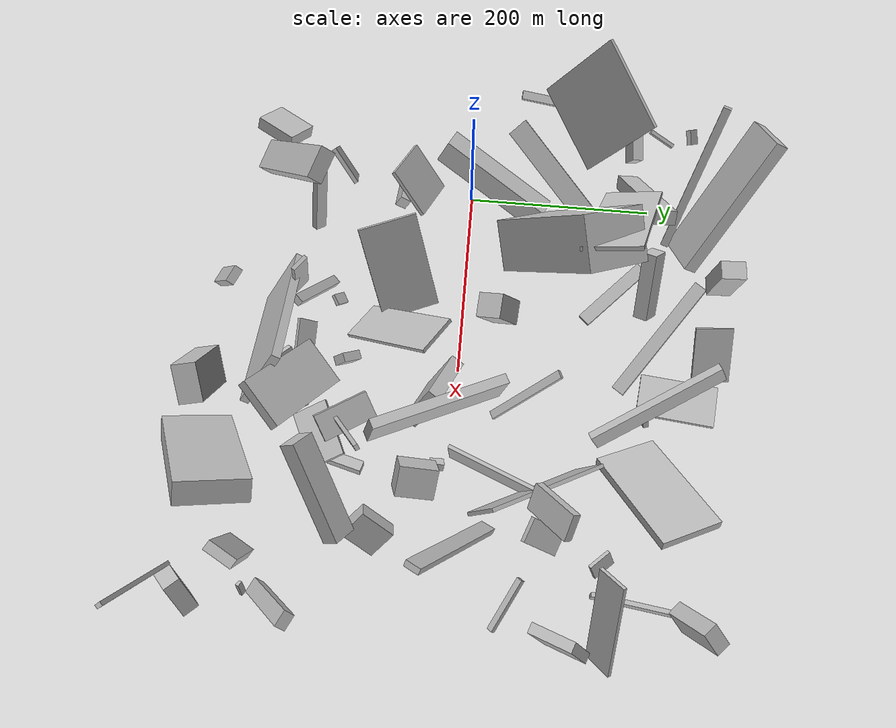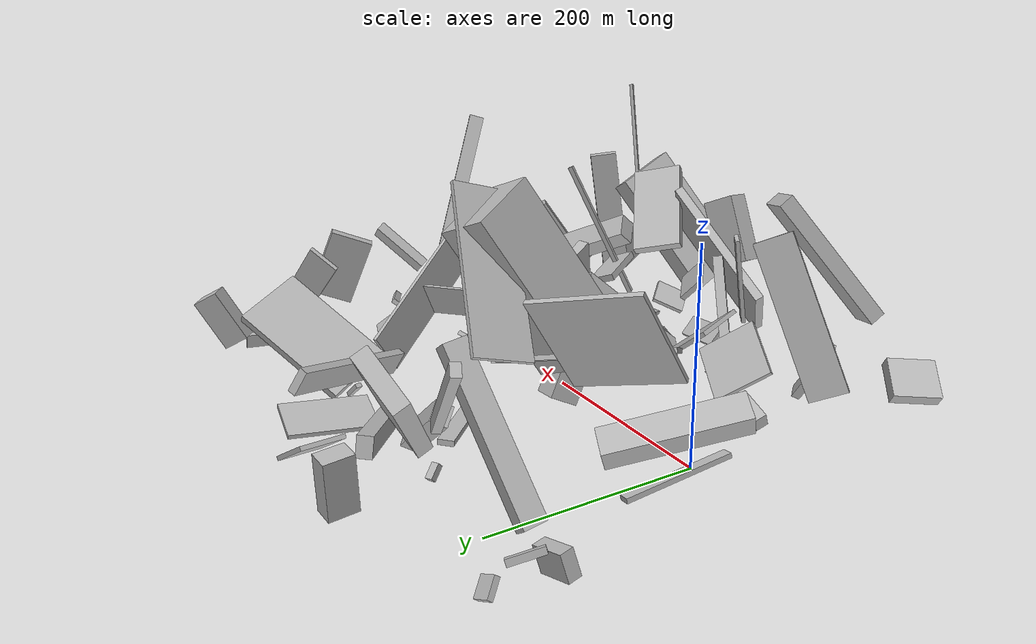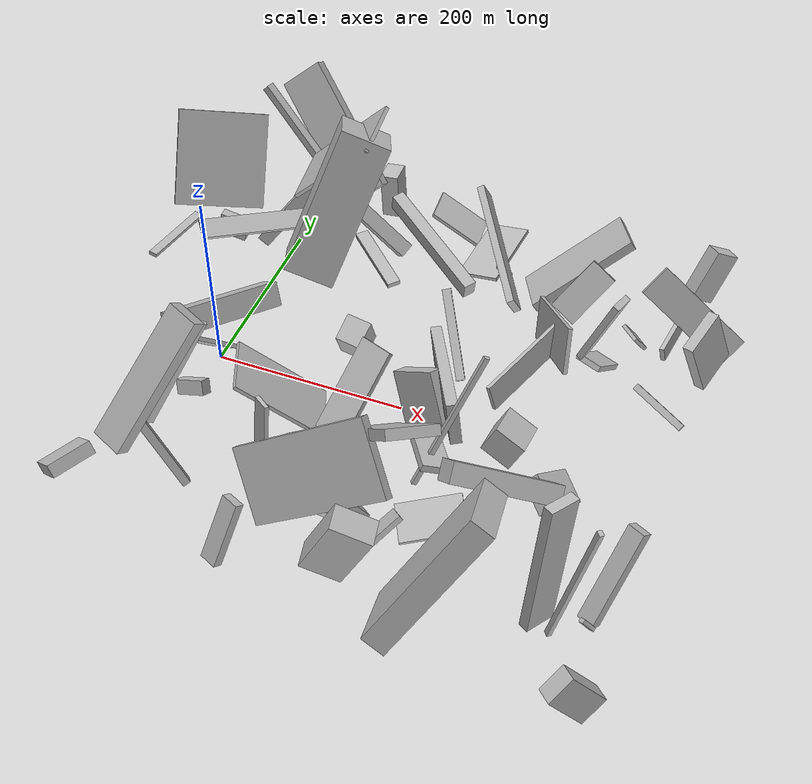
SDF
<sdf version="1.6">
 <world name="default">
  <scene>
   <sky><clouds><speed>12</speed></clouds></sky>
   <ambient>0.4 0.4 0.4 1</ambient>
   <background>0.7 0.7 0.7 1</background>
   <shadows>1</shadows>
  </scene>
  <gravity>0 0 -9.8066</gravity>
  <magnetic_field>6e-06 2.3e-05 -4.2e-05</magnetic_field>
  <physics default="0" name="default_physics" type="ode">
   <ode>
    <solver>
     <type>quick</type>
     <iters>10</iters>
     <sor>1.0</sor>
     <use_dynamic_moi_rescaling>0</use_dynamic_moi_rescaling>
    </solver>
    <constraints>
     <cfm>0</cfm>
     <erp>0.2</erp>
     <contact_max_correcting_vel>100</contact_max_correcting_vel>
     <contact_surface_layer>0.001</contact_surface_layer>
    </constraints>
   </ode>
   <max_step_size>0.004</max_step_size>
   <real_time_factor>1</real_time_factor>
   <real_time_update_rate>250</real_time_update_rate>
  </physics>
  <light name="sun" type="directional">
   <pose>0 0 10 0 0 0</pose>
   <diffuse>0.8 0.8 0.8 1</diffuse>
   <specular>0.2 0.2 0.2 1</specular>
   <attenuation>
    <range>1000</range>
    <constant>0.9</constant>
    <linear>0.01</linear>
    <quadratic>0.001</quadratic>
   </attenuation>
   <direction>-0.5 0.1 -0.9</direction>
  </light>
  <model name="building_1">
   <static>0</static>
   <pose>227.481139265218 -249.1822610221553 74.92997537212239 -0.10817215695686103 -0.4285039020729873 -2.9130374501938943</pose>
   <link name="link">
    <gravity>0</gravity>
    <pose>0 0 36.5 0 0 0</pose>
    <collision name="collision"><geometry><box><size>39 24 73</size></box></geometry></collision>
    <visual name="visual">
     <cast_shadows>0</cast_shadows>
     <geometry><box><size>39 24 73</size></box></geometry>
     <material>
      <script>
       <uri>model://HANNAS_wall/materials/scripts</uri>
       <uri>model://HANNAS_wall/materials/textures</uri>
       <name>vrc/HANNAS_wall</name>
      </script>
     </material>
    </visual>
   </link>
  </model>
  <model name="building_2">
   <static>0</static>
   <pose>292.84471855620217 -0.5307530838504881 51.10956724736447 0.843014397676574 -1.3268915294652515 -2.826468958626521</pose>
   <link name="link">
    <gravity>0</gravity>
    <pose>0 0 51.0 0 0 0</pose>
    <collision name="collision"><geometry><box><size>30 4 102</size></box></geometry></collision>
    <visual name="visual">
     <cast_shadows>0</cast_shadows>
     <geometry><box><size>30 4 102</size></box></geometry>
     <material>
      <script>
       <uri>model://HANNAS_wall/materials/scripts</uri>
       <uri>model://HANNAS_wall/materials/textures</uri>
       <name>vrc/HANNAS_wall</name>
      </script>
     </material>
    </visual>
   </link>
  </model>
  <model name="building_3">
   <static>0</static>
   <pose>254.46805633644038 -83.00629290061852 77.61631660739066 1.1665914870544623 -1.170065612739966 0.9408880169866417</pose>
   <link name="link">
    <gravity>0</gravity>
    <pose>0 0 28.5 0 0 0</pose>
    <collision name="collision"><geometry><box><size>7 28 57</size></box></geometry></collision>
    <visual name="visual">
     <cast_shadows>0</cast_shadows>
     <geometry><box><size>7 28 57</size></box></geometry>
     <material>
      <script>
       <uri>model://HANNAS_wall/materials/scripts</uri>
       <uri>model://HANNAS_wall/materials/textures</uri>
       <name>vrc/HANNAS_wall</name>
      </script>
     </material>
    </visual>
   </link>
  </model>
  <model name="building_4">
   <static>0</static>
   <pose>11.763566412089332 -127.40269227612251 106.6651090704433 1.9325024818764505 -1.115938416840151 0.3155344388633478</pose>
   <link name="link">
    <gravity>0</gravity>
    <pose>0 0 2.0 0 0 0</pose>
    <collision name="collision"><geometry><box><size>150 37 4</size></box></geometry></collision>
    <visual name="visual">
     <cast_shadows>0</cast_shadows>
     <geometry><box><size>150 37 4</size></box></geometry>
     <material>
      <script>
       <uri>model://HANNAS_wall/materials/scripts</uri>
       <uri>model://HANNAS_wall/materials/textures</uri>
       <name>vrc/HANNAS_wall</name>
      </script>
     </material>
    </visual>
   </link>
  </model>
  <model name="building_5">
   <static>0</static>
   <pose>317.58651227378783 -204.91557742856733 86.48062145749546 1.137433498627147 0.5079004303610929 -0.07192468600488103</pose>
   <link name="link">
    <gravity>0</gravity>
    <pose>0 0 35.0 0 0 0</pose>
    <collision name="collision"><geometry><box><size>24 150 70</size></box></geometry></collision>
    <visual name="visual">
     <cast_shadows>0</cast_shadows>
     <geometry><box><size>24 150 70</size></box></geometry>
     <material>
      <script>
       <uri>model://HANNAS_wall/materials/scripts</uri>
       <uri>model://HANNAS_wall/materials/textures</uri>
       <name>vrc/HANNAS_wall</name>
      </script>
     </material>
    </visual>
   </link>
  </model>
  <model name="building_6">
   <static>0</static>
   <pose>268.37720599291623 148.1540410221866 32.94483416400994 -1.0284412072009141 1.0555518114377276 1.0396991069899049</pose>
   <link name="link">
    <gravity>0</gravity>
    <pose>0 0 75.0 0 0 0</pose>
    <collision name="collision"><geometry><box><size>24 8 150</size></box></geometry></collision>
    <visual name="visual">
     <cast_shadows>0</cast_shadows>
     <geometry><box><size>24 8 150</size></box></geometry>
     <material>
      <script>
       <uri>model://HANNAS_wall/materials/scripts</uri>
       <uri>model://HANNAS_wall/materials/textures</uri>
       <name>vrc/HANNAS_wall</name>
      </script>
     </material>
    </visual>
   </link>
  </model>
  <model name="building_7">
   <static>0</static>
   <pose>77.37119824431403 61.45337844499391 96.94105020687759 0.42038123651597553 -0.3861475229336295 -2.9031322622093</pose>
   <link name="link">
    <gravity>0</gravity>
    <pose>0 0 75.0 0 0 0</pose>
    <collision name="collision"><geometry><box><size>51 63 150</size></box></geometry></collision>
    <visual name="visual">
     <cast_shadows>0</cast_shadows>
     <geometry><box><size>51 63 150</size></box></geometry>
     <material>
      <script>
       <uri>model://HANNAS_wall/materials/scripts</uri>
       <uri>model://HANNAS_wall/materials/textures</uri>
       <name>vrc/HANNAS_wall</name>
      </script>
     </material>
    </visual>
   </link>
  </model>
  <model name="building_8">
   <static>0</static>
   <pose>132.95149250428122 -136.42965369837054 12.84420384641897 -0.8874151281414072 0.14816767146375545 0.5291461373962191</pose>
   <link name="link">
    <gravity>0</gravity>
    <pose>0 0 2.0 0 0 0</pose>
    <collision name="collision"><geometry><box><size>12 17 4</size></box></geometry></collision>
    <visual name="visual">
     <cast_shadows>0</cast_shadows>
     <geometry><box><size>12 17 4</size></box></geometry>
     <material>
      <script>
       <uri>model://HANNAS_wall/materials/scripts</uri>
       <uri>model://HANNAS_wall/materials/textures</uri>
       <name>vrc/HANNAS_wall</name>
      </script>
     </material>
    </visual>
   </link>
  </model>
  <model name="building_9">
   <static>0</static>
   <pose>376.70290979209534 119.71949673692075 20.304417783715337 0.9620605557790457 0.05304821350896932 -0.3554064819603349</pose>
   <link name="link">
    <gravity>0</gravity>
    <pose>0 0 22.0 0 0 0</pose>
    <collision name="collision"><geometry><box><size>27 6 44</size></box></geometry></collision>
    <visual name="visual">
     <cast_shadows>0</cast_shadows>
     <geometry><box><size>27 6 44</size></box></geometry>
     <material>
      <script>
       <uri>model://HANNAS_wall/materials/scripts</uri>
       <uri>model://HANNAS_wall/materials/textures</uri>
       <name>vrc/HANNAS_wall</name>
      </script>
     </material>
    </visual>
   </link>
  </model>
  <model name="building_10">
   <static>0</static>
   <pose>253.3570128118311 -173.23025798556026 39.82212911906193 0.522751097314918 -0.5934007068349888 -0.9119568490904469</pose>
   <link name="link">
    <gravity>0</gravity>
    <pose>0 0 2.5 0 0 0</pose>
    <collision name="collision"><geometry><box><size>25 34 5</size></box></geometry></collision>
    <visual name="visual">
     <cast_shadows>0</cast_shadows>
     <geometry><box><size>25 34 5</size></box></geometry>
     <material>
      <script>
       <uri>model://HANNAS_wall/materials/scripts</uri>
       <uri>model://HANNAS_wall/materials/textures</uri>
       <name>vrc/HANNAS_wall</name>
      </script>
     </material>
    </visual>
   </link>
  </model>
  <model name="building_11">
   <static>0</static>
   <pose>228.65109916550088 -28.04214869931148 51.38752653294312 1.9010968372757036 -0.921661819686512 2.3212789833257164</pose>
   <link name="link">
    <gravity>0</gravity>
    <pose>0 0 7.5 0 0 0</pose>
    <collision name="collision"><geometry><box><size>57 60 15</size></box></geometry></collision>
    <visual name="visual">
     <cast_shadows>0</cast_shadows>
     <geometry><box><size>57 60 15</size></box></geometry>
     <material>
      <script>
       <uri>model://HANNAS_wall/materials/scripts</uri>
       <uri>model://HANNAS_wall/materials/textures</uri>
       <name>vrc/HANNAS_wall</name>
      </script>
     </material>
    </visual>
   </link>
  </model>
  <model name="building_12">
   <static>0</static>
   <pose>301.5117001836935 -13.387505962808495 14.928694604041551 2.36538488830194 0.18210927901703153 1.5985553789187452</pose>
   <link name="link">
    <gravity>0</gravity>
    <pose>0 0 4.5 0 0 0</pose>
    <collision name="collision"><geometry><box><size>15 10 9</size></box></geometry></collision>
    <visual name="visual">
     <cast_shadows>0</cast_shadows>
     <geometry><box><size>15 10 9</size></box></geometry>
     <material>
      <script>
       <uri>model://HANNAS_wall/materials/scripts</uri>
       <uri>model://HANNAS_wall/materials/textures</uri>
       <name>vrc/HANNAS_wall</name>
      </script>
     </material>
    </visual>
   </link>
  </model>
  <model name="building_13">
   <static>0</static>
   <pose>-16.44971325780183 27.543368275352492 38.60653595737185 -0.9905697111795937 -0.24240880794003608 -2.074907290572221</pose>
   <link name="link">
    <gravity>0</gravity>
    <pose>0 0 13.0 0 0 0</pose>
    <collision name="collision"><geometry><box><size>127 26 26</size></box></geometry></collision>
    <visual name="visual">
     <cast_shadows>0</cast_shadows>
     <geometry><box><size>127 26 26</size></box></geometry>
     <material>
      <script>
       <uri>model://HANNAS_wall/materials/scripts</uri>
       <uri>model://HANNAS_wall/materials/textures</uri>
       <name>vrc/HANNAS_wall</name>
      </script>
     </material>
    </visual>
   </link>
  </model>
  <model name="building_14">
   <static>0</static>
   <pose>206.70030092017095 -202.76124314428657 76.89679999836368 -0.5535309154315026 -0.5972642211111988 0.0490688112240395</pose>
   <link name="link">
    <gravity>0</gravity>
    <pose>0 0 36.5 0 0 0</pose>
    <collision name="collision"><geometry><box><size>150 9 73</size></box></geometry></collision>
    <visual name="visual">
     <cast_shadows>0</cast_shadows>
     <geometry><box><size>150 9 73</size></box></geometry>
     <material>
      <script>
       <uri>model://HANNAS_wall/materials/scripts</uri>
       <uri>model://HANNAS_wall/materials/textures</uri>
       <name>vrc/HANNAS_wall</name>
      </script>
     </material>
    </visual>
   </link>
  </model>
  <model name="building_15">
   <static>0</static>
   <pose>20.392383311140673 182.70964804384616 73.57440455745558 -0.18941493913468962 -0.9443363826028112 0.22367839608463977</pose>
   <link name="link">
    <gravity>0</gravity>
    <pose>0 0 7.0 0 0 0</pose>
    <collision name="collision"><geometry><box><size>150 22 14</size></box></geometry></collision>
    <visual name="visual">
     <cast_shadows>0</cast_shadows>
     <geometry><box><size>150 22 14</size></box></geometry>
     <material>
      <script>
       <uri>model://HANNAS_wall/materials/scripts</uri>
       <uri>model://HANNAS_wall/materials/textures</uri>
       <name>vrc/HANNAS_wall</name>
      </script>
     </material>
    </visual>
   </link>
  </model>
  <model name="building_16">
   <static>0</static>
   <pose>426.5182102439301 -260.1216215273775 93.17090263658616 0.1361795748633546 -0.1431622393701641 2.257004053396519</pose>
   <link name="link">
    <gravity>0</gravity>
    <pose>0 0 75.0 0 0 0</pose>
    <collision name="collision"><geometry><box><size>5 4 150</size></box></geometry></collision>
    <visual name="visual">
     <cast_shadows>0</cast_shadows>
     <geometry><box><size>5 4 150</size></box></geometry>
     <material>
      <script>
       <uri>model://HANNAS_wall/materials/scripts</uri>
       <uri>model://HANNAS_wall/materials/textures</uri>
       <name>vrc/HANNAS_wall</name>
      </script>
     </material>
    </visual>
   </link>
  </model>
  <model name="building_17">
   <static>0</static>
   <pose>94.5045951715115 202.3843729573835 43.73109941872113 -0.66268458013724 -0.6974288209415047 -3.1241463622554444</pose>
   <link name="link">
    <gravity>0</gravity>
    <pose>0 0 9.5 0 0 0</pose>
    <collision name="collision"><geometry><box><size>74 16 19</size></box></geometry></collision>
    <visual name="visual">
     <cast_shadows>0</cast_shadows>
     <geometry><box><size>74 16 19</size></box></geometry>
     <material>
      <script>
       <uri>model://HANNAS_wall/materials/scripts</uri>
       <uri>model://HANNAS_wall/materials/textures</uri>
       <name>vrc/HANNAS_wall</name>
      </script>
     </material>
    </visual>
   </link>
  </model>
  <model name="building_18">
   <static>0</static>
   <pose>30.20996367917128 -39.84844854371961 65.47350899139073 0.8507173026576427 -0.5237301167515331 -0.37554103182773535</pose>
   <link name="link">
    <gravity>0</gravity>
    <pose>0 0 27.0 0 0 0</pose>
    <collision name="collision"><geometry><box><size>55 4 54</size></box></geometry></collision>
    <visual name="visual">
     <cast_shadows>0</cast_shadows>
     <geometry><box><size>55 4 54</size></box></geometry>
     <material>
      <script>
       <uri>model://HANNAS_wall/materials/scripts</uri>
       <uri>model://HANNAS_wall/materials/textures</uri>
       <name>vrc/HANNAS_wall</name>
      </script>
     </material>
    </visual>
   </link>
  </model>
  <model name="building_19">
   <static>0</static>
   <pose>349.12888193439375 99.15291676920248 121.73016292919598 2.316568015997684 -0.500921253119313 2.8980883553300485</pose>
   <link name="link">
    <gravity>0</gravity>
    <pose>0 0 4.5 0 0 0</pose>
    <collision name="collision"><geometry><box><size>28 58 9</size></box></geometry></collision>
    <visual name="visual">
     <cast_shadows>0</cast_shadows>
     <geometry><box><size>28 58 9</size></box></geometry>
     <material>
      <script>
       <uri>model://HANNAS_wall/materials/scripts</uri>
       <uri>model://HANNAS_wall/materials/textures</uri>
       <name>vrc/HANNAS_wall</name>
      </script>
     </material>
    </visual>
   </link>
  </model>
  <model name="building_20">
   <static>0</static>
   <pose>323.1903825618175 -13.88970625944479 36.79013878288636 -1.0495314141733616 1.057704362918457 -2.697406226329589</pose>
   <link name="link">
    <gravity>0</gravity>
    <pose>0 0 20.5 0 0 0</pose>
    <collision name="collision"><geometry><box><size>28 33 41</size></box></geometry></collision>
    <visual name="visual">
     <cast_shadows>0</cast_shadows>
     <geometry><box><size>28 33 41</size></box></geometry>
     <material>
      <script>
       <uri>model://HANNAS_wall/materials/scripts</uri>
       <uri>model://HANNAS_wall/materials/textures</uri>
       <name>vrc/HANNAS_wall</name>
      </script>
     </material>
    </visual>
   </link>
  </model>
  <model name="building_21">
   <static>0</static>
   <pose>-37.505519190078004 -190.87447803252329 50.829616856307375 1.6821631782131954 0.917472732472657 -0.42883126359170637</pose>
   <link name="link">
    <gravity>0</gravity>
    <pose>0 0 22.0 0 0 0</pose>
    <collision name="collision"><geometry><box><size>13 38 44</size></box></geometry></collision>
    <visual name="visual">
     <cast_shadows>0</cast_shadows>
     <geometry><box><size>13 38 44</size></box></geometry>
     <material>
      <script>
       <uri>model://HANNAS_wall/materials/scripts</uri>
       <uri>model://HANNAS_wall/materials/textures</uri>
       <name>vrc/HANNAS_wall</name>
      </script>
     </material>
    </visual>
   </link>
  </model>
  <model name="building_22">
   <static>0</static>
   <pose>-91.81763550657642 91.54988038701597 68.17348361863317 -2.9942344213891006 -0.14826731942321003 3.0537513907169274</pose>
   <link name="link">
    <gravity>0</gravity>
    <pose>0 0 2.0 0 0 0</pose>
    <collision name="collision"><geometry><box><size>9 90 4</size></box></geometry></collision>
    <visual name="visual">
     <cast_shadows>0</cast_shadows>
     <geometry><box><size>9 90 4</size></box></geometry>
     <material>
      <script>
       <uri>model://HANNAS_wall/materials/scripts</uri>
       <uri>model://HANNAS_wall/materials/textures</uri>
       <name>vrc/HANNAS_wall</name>
      </script>
     </material>
    </visual>
   </link>
  </model>
  <model name="building_23">
   <static>0</static>
   <pose>92.46487773179209 -40.88532026352868 57.66720573114307 1.5134492840720026 0.7093661143286526 0.3614581923329056</pose>
   <link name="link">
    <gravity>0</gravity>
    <pose>0 0 31.0 0 0 0</pose>
    <collision name="collision"><geometry><box><size>105 4 62</size></box></geometry></collision>
    <visual name="visual">
     <cast_shadows>0</cast_shadows>
     <geometry><box><size>105 4 62</size></box></geometry>
     <material>
      <script>
       <uri>model://HANNAS_wall/materials/scripts</uri>
       <uri>model://HANNAS_wall/materials/textures</uri>
       <name>vrc/HANNAS_wall</name>
      </script>
     </material>
    </visual>
   </link>
  </model>
  <model name="building_24">
   <static>0</static>
   <pose>149.20009823511052 37.78466550882594 39.85900780131026 1.4198370230055126 0.4723534577524025 -1.7116813820457895</pose>
   <link name="link">
    <gravity>0</gravity>
    <pose>0 0 13.0 0 0 0</pose>
    <collision name="collision"><geometry><box><size>28 42 26</size></box></geometry></collision>
    <visual name="visual">
     <cast_shadows>0</cast_shadows>
     <geometry><box><size>28 42 26</size></box></geometry>
     <material>
      <script>
       <uri>model://HANNAS_wall/materials/scripts</uri>
       <uri>model://HANNAS_wall/materials/textures</uri>
       <name>vrc/HANNAS_wall</name>
      </script>
     </material>
    </visual>
   </link>
  </model>
  <model name="building_25">
   <static>0</static>
   <pose>449.54375979241786 -202.2864121639913 34.96292042151427 2.420693077154504 -0.8402076654071738 -2.852576208106354</pose>
   <link name="link">
    <gravity>0</gravity>
    <pose>0 0 3.0 0 0 0</pose>
    <collision name="collision"><geometry><box><size>15 4 6</size></box></geometry></collision>
    <visual name="visual">
     <cast_shadows>0</cast_shadows>
     <geometry><box><size>15 4 6</size></box></geometry>
     <material>
      <script>
       <uri>model://HANNAS_wall/materials/scripts</uri>
       <uri>model://HANNAS_wall/materials/textures</uri>
       <name>vrc/HANNAS_wall</name>
      </script>
     </material>
    </visual>
   </link>
  </model>
  <model name="building_26">
   <static>0</static>
   <pose>256.08429475253826 -153.33897154982589 23.51143279857908 1.3996758325202465 -0.22562888603370088 2.0550898142576237</pose>
   <link name="link">
    <gravity>0</gravity>
    <pose>0 0 31.5 0 0 0</pose>
    <collision name="collision"><geometry><box><size>39 4 63</size></box></geometry></collision>
    <visual name="visual">
     <cast_shadows>0</cast_shadows>
     <geometry><box><size>39 4 63</size></box></geometry>
     <material>
      <script>
       <uri>model://HANNAS_wall/materials/scripts</uri>
       <uri>model://HANNAS_wall/materials/textures</uri>
       <name>vrc/HANNAS_wall</name>
      </script>
     </material>
    </visual>
   </link>
  </model>
  <model name="building_27">
   <static>0</static>
   <pose>6.0443198682329635 -210.17496576361805 93.29388807799623 0.6664013244558669 -0.19227391634768604 2.779181408015458</pose>
   <link name="link">
    <gravity>0</gravity>
    <pose>0 0 71.0 0 0 0</pose>
    <collision name="collision"><geometry><box><size>31 15 142</size></box></geometry></collision>
    <visual name="visual">
     <cast_shadows>0</cast_shadows>
     <geometry><box><size>31 15 142</size></box></geometry>
     <material>
      <script>
       <uri>model://HANNAS_wall/materials/scripts</uri>
       <uri>model://HANNAS_wall/materials/textures</uri>
       <name>vrc/HANNAS_wall</name>
      </script>
     </material>
    </visual>
   </link>
  </model>
  <model name="building_28">
   <static>0</static>
   <pose>449.90949715977314 -160.9614323110576 61.232895488167756 1.5403292388078382 -0.9746533831512645 1.1237064837067205</pose>
   <link name="link">
    <gravity>0</gravity>
    <pose>0 0 8.5 0 0 0</pose>
    <collision name="collision"><geometry><box><size>96 12 17</size></box></geometry></collision>
    <visual name="visual">
     <cast_shadows>0</cast_shadows>
     <geometry><box><size>96 12 17</size></box></geometry>
     <material>
      <script>
       <uri>model://HANNAS_wall/materials/scripts</uri>
       <uri>model://HANNAS_wall/materials/textures</uri>
       <name>vrc/HANNAS_wall</name>
      </script>
     </material>
    </visual>
   </link>
  </model>
  <model name="building_29">
   <static>0</static>
   <pose>224.16386707685749 72.03240204019131 44.85510525011972 1.3140876757290196 -0.6211563258909762 2.122987104458905</pose>
   <link name="link">
    <gravity>0</gravity>
    <pose>0 0 4.5 0 0 0</pose>
    <collision name="collision"><geometry><box><size>94 4 9</size></box></geometry></collision>
    <visual name="visual">
     <cast_shadows>0</cast_shadows>
     <geometry><box><size>94 4 9</size></box></geometry>
     <material>
      <script>
       <uri>model://HANNAS_wall/materials/scripts</uri>
       <uri>model://HANNAS_wall/materials/textures</uri>
       <name>vrc/HANNAS_wall</name>
      </script>
     </material>
    </visual>
   </link>
  </model>
  <model name="building_30">
   <static>0</static>
   <pose>222.30578394619397 -130.54185414333284 112.95185304210686 0.32834113265092946 -0.7680757575909025 2.052702519989607</pose>
   <link name="link">
    <gravity>0</gravity>
    <pose>0 0 48.0 0 0 0</pose>
    <collision name="collision"><geometry><box><size>10 50 96</size></box></geometry></collision>
    <visual name="visual">
     <cast_shadows>0</cast_shadows>
     <geometry><box><size>10 50 96</size></box></geometry>
     <material>
      <script>
       <uri>model://HANNAS_wall/materials/scripts</uri>
       <uri>model://HANNAS_wall/materials/textures</uri>
       <name>vrc/HANNAS_wall</name>
      </script>
     </material>
    </visual>
   </link>
  </model>
  <model name="building_31">
   <static>0</static>
   <pose>412.4592483215169 -202.82065333252285 99.29815009101594 -1.7603713567702026 -1.4379412945913943 1.2263952097043287</pose>
   <link name="link">
    <gravity>0</gravity>
    <pose>0 0 5.0 0 0 0</pose>
    <collision name="collision"><geometry><box><size>142 30 10</size></box></geometry></collision>
    <visual name="visual">
     <cast_shadows>0</cast_shadows>
     <geometry><box><size>142 30 10</size></box></geometry>
     <material>
      <script>
       <uri>model://HANNAS_wall/materials/scripts</uri>
       <uri>model://HANNAS_wall/materials/textures</uri>
       <name>vrc/HANNAS_wall</name>
      </script>
     </material>
    </visual>
   </link>
  </model>
  <model name="building_32">
   <static>0</static>
   <pose>315.1896964840672 212.40884641995854 58.64917207641278 2.76565728638501 -0.5694940837149953 0.613084247786662</pose>
   <link name="link">
    <gravity>0</gravity>
    <pose>0 0 4.5 0 0 0</pose>
    <collision name="collision"><geometry><box><size>120 70 9</size></box></geometry></collision>
    <visual name="visual">
     <cast_shadows>0</cast_shadows>
     <geometry><box><size>120 70 9</size></box></geometry>
     <material>
      <script>
       <uri>model://HANNAS_wall/materials/scripts</uri>
       <uri>model://HANNAS_wall/materials/textures</uri>
       <name>vrc/HANNAS_wall</name>
      </script>
     </material>
    </visual>
   </link>
  </model>
  <model name="building_33">
   <static>0</static>
   <pose>220.49611342874766 48.421098393382124 52.67769425769472 0.2989559995022586 1.2760213201885802 -0.8066114481330431</pose>
   <link name="link">
    <gravity>0</gravity>
    <pose>0 0 75.0 0 0 0</pose>
    <collision name="collision"><geometry><box><size>41 11 150</size></box></geometry></collision>
    <visual name="visual">
     <cast_shadows>0</cast_shadows>
     <geometry><box><size>41 11 150</size></box></geometry>
     <material>
      <script>
       <uri>model://HANNAS_wall/materials/scripts</uri>
       <uri>model://HANNAS_wall/materials/textures</uri>
       <name>vrc/HANNAS_wall</name>
      </script>
     </material>
    </visual>
   </link>
  </model>
  <model name="building_34">
   <static>0</static>
   <pose>-70.19065152311701 220.35427639976953 27.4508891080334 1.285629753475727 0.23135236030761316 -0.4876057852621139</pose>
   <link name="link">
    <gravity>0</gravity>
    <pose>0 0 15.0 0 0 0</pose>
    <collision name="collision"><geometry><box><size>4 6 30</size></box></geometry></collision>
    <visual name="visual">
     <cast_shadows>0</cast_shadows>
     <geometry><box><size>4 6 30</size></box></geometry>
     <material>
      <script>
       <uri>model://HANNAS_wall/materials/scripts</uri>
       <uri>model://HANNAS_wall/materials/textures</uri>
       <name>vrc/HANNAS_wall</name>
      </script>
     </material>
    </visual>
   </link>
  </model>
  <model name="building_35">
   <static>0</static>
   <pose>-37.426244260936755 94.4871216463756 118.08374931538054 -0.2591772527372223 -0.5234962970813662 -0.8624765621062863</pose>
   <link name="link">
    <gravity>0</gravity>
    <pose>0 0 48.0 0 0 0</pose>
    <collision name="collision"><geometry><box><size>4 91 96</size></box></geometry></collision>
    <visual name="visual">
     <cast_shadows>0</cast_shadows>
     <geometry><box><size>4 91 96</size></box></geometry>
     <material>
      <script>
       <uri>model://HANNAS_wall/materials/scripts</uri>
       <uri>model://HANNAS_wall/materials/textures</uri>
       <name>vrc/HANNAS_wall</name>
      </script>
     </material>
    </visual>
   </link>
  </model>
  <model name="building_36">
   <static>0</static>
   <pose>150.02668738712518 207.26413337597333 30.48408234608882 1.2315860410001511 1.325657118036561 2.1935398872629093</pose>
   <link name="link">
    <gravity>0</gravity>
    <pose>0 0 7.0 0 0 0</pose>
    <collision name="collision"><geometry><box><size>19 141 14</size></box></geometry></collision>
    <visual name="visual">
     <cast_shadows>0</cast_shadows>
     <geometry><box><size>19 141 14</size></box></geometry>
     <material>
      <script>
       <uri>model://HANNAS_wall/materials/scripts</uri>
       <uri>model://HANNAS_wall/materials/textures</uri>
       <name>vrc/HANNAS_wall</name>
      </script>
     </material>
    </visual>
   </link>
  </model>
  <model name="building_37">
   <static>0</static>
   <pose>393.54670559674895 164.7583608527571 15.616955270000048 0.14139410400470295 -0.9063922033186937 -2.516775905647722</pose>
   <link name="link">
    <gravity>0</gravity>
    <pose>0 0 2.0 0 0 0</pose>
    <collision name="collision"><geometry><box><size>21 26 4</size></box></geometry></collision>
    <visual name="visual">
     <cast_shadows>0</cast_shadows>
     <geometry><box><size>21 26 4</size></box></geometry>
     <material>
      <script>
       <uri>model://HANNAS_wall/materials/scripts</uri>
       <uri>model://HANNAS_wall/materials/textures</uri>
       <name>vrc/HANNAS_wall</name>
      </script>
     </material>
    </visual>
   </link>
  </model>
  <model name="building_38">
   <static>0</static>
   <pose>-68.92731829729058 181.62573253726322 26.79336971665262 2.980080894711216 0.25462130960855145 0.1017879752600586</pose>
   <link name="link">
    <gravity>0</gravity>
    <pose>0 0 11.5 0 0 0</pose>
    <collision name="collision"><geometry><box><size>33 12 23</size></box></geometry></collision>
    <visual name="visual">
     <cast_shadows>0</cast_shadows>
     <geometry><box><size>33 12 23</size></box></geometry>
     <material>
      <script>
       <uri>model://HANNAS_wall/materials/scripts</uri>
       <uri>model://HANNAS_wall/materials/textures</uri>
       <name>vrc/HANNAS_wall</name>
      </script>
     </material>
    </visual>
   </link>
  </model>
  <model name="building_39">
   <static>0</static>
   <pose>174.4670306181797 -78.83244691765098 20.514851461338214 0.08451366381692513 0.4579272093889654 -2.0953615249995474</pose>
   <link name="link">
    <gravity>0</gravity>
    <pose>0 0 10.5 0 0 0</pose>
    <collision name="collision"><geometry><box><size>10 9 21</size></box></geometry></collision>
    <visual name="visual">
     <cast_shadows>0</cast_shadows>
     <geometry><box><size>10 9 21</size></box></geometry>
     <material>
      <script>
       <uri>model://HANNAS_wall/materials/scripts</uri>
       <uri>model://HANNAS_wall/materials/textures</uri>
       <name>vrc/HANNAS_wall</name>
      </script>
     </material>
    </visual>
   </link>
  </model>
  <model name="building_40">
   <static>0</static>
   <pose>238.69431919571426 202.72973854574985 26.16177788936818 -0.01782896762795868 -0.7369912477020466 -2.9258032488864782</pose>
   <link name="link">
    <gravity>0</gravity>
    <pose>0 0 2.0 0 0 0</pose>
    <collision name="collision"><geometry><box><size>20 6 4</size></box></geometry></collision>
    <visual name="visual">
     <cast_shadows>0</cast_shadows>
     <geometry><box><size>20 6 4</size></box></geometry>
     <material>
      <script>
       <uri>model://HANNAS_wall/materials/scripts</uri>
       <uri>model://HANNAS_wall/materials/textures</uri>
       <name>vrc/HANNAS_wall</name>
      </script>
     </material>
    </visual>
   </link>
  </model>
  <model name="building_41">
   <static>0</static>
   <pose>77.84155573814873 143.59754453017428 103.86147745292594 1.1640461260442803 -1.121960953444741 -0.44748412107988383</pose>
   <link name="link">
    <gravity>0</gravity>
    <pose>0 0 75.0 0 0 0</pose>
    <collision name="collision"><geometry><box><size>4 21 150</size></box></geometry></collision>
    <visual name="visual">
     <cast_shadows>0</cast_shadows>
     <geometry><box><size>4 21 150</size></box></geometry>
     <material>
      <script>
       <uri>model://HANNAS_wall/materials/scripts</uri>
       <uri>model://HANNAS_wall/materials/textures</uri>
       <name>vrc/HANNAS_wall</name>
      </script>
     </material>
    </visual>
   </link>
  </model>
  <model name="building_42">
   <static>0</static>
   <pose>442.6767907829958 268.3338058313158 39.87124939254606 1.3720207658053125 -1.0377880051804877 0.9836680601661449</pose>
   <link name="link">
    <gravity>0</gravity>
    <pose>0 0 8.5 0 0 0</pose>
    <collision name="collision"><geometry><box><size>57 30 17</size></box></geometry></collision>
    <visual name="visual">
     <cast_shadows>0</cast_shadows>
     <geometry><box><size>57 30 17</size></box></geometry>
     <material>
      <script>
       <uri>model://HANNAS_wall/materials/scripts</uri>
       <uri>model://HANNAS_wall/materials/textures</uri>
       <name>vrc/HANNAS_wall</name>
      </script>
     </material>
    </visual>
   </link>
  </model>
  <model name="building_43">
   <static>0</static>
   <pose>4.788772041485715 220.98519314262887 118.38630065725636 1.506524687197237 -0.7126678578527177 2.82438621255583</pose>
   <link name="link">
    <gravity>0</gravity>
    <pose>0 0 4.0 0 0 0</pose>
    <collision name="collision"><geometry><box><size>150 11 8</size></box></geometry></collision>
    <visual name="visual">
     <cast_shadows>0</cast_shadows>
     <geometry><box><size>150 11 8</size></box></geometry>
     <material>
      <script>
       <uri>model://HANNAS_wall/materials/scripts</uri>
       <uri>model://HANNAS_wall/materials/textures</uri>
       <name>vrc/HANNAS_wall</name>
      </script>
     </material>
    </visual>
   </link>
  </model>
  <model name="building_44">
   <static>0</static>
   <pose>466.97583842095077 123.56487198083973 65.6645756274543 1.4687978148450138 -0.3758684468660901 1.2433425446016932</pose>
   <link name="link">
    <gravity>0</gravity>
    <pose>0 0 5.5 0 0 0</pose>
    <collision name="collision"><geometry><box><size>46 75 11</size></box></geometry></collision>
    <visual name="visual">
     <cast_shadows>0</cast_shadows>
     <geometry><box><size>46 75 11</size></box></geometry>
     <material>
      <script>
       <uri>model://HANNAS_wall/materials/scripts</uri>
       <uri>model://HANNAS_wall/materials/textures</uri>
       <name>vrc/HANNAS_wall</name>
      </script>
     </material>
    </visual>
   </link>
  </model>
  <model name="building_45">
   <static>0</static>
   <pose>-88.13365328385763 247.52838225744892 18.615312141480835 0.548667843642135 -0.6485222822680325 1.4131092077680552</pose>
   <link name="link">
    <gravity>0</gravity>
    <pose>0 0 8.5 0 0 0</pose>
    <collision name="collision"><geometry><box><size>5 16 17</size></box></geometry></collision>
    <visual name="visual">
     <cast_shadows>0</cast_shadows>
     <geometry><box><size>5 16 17</size></box></geometry>
     <material>
      <script>
       <uri>model://HANNAS_wall/materials/scripts</uri>
       <uri>model://HANNAS_wall/materials/textures</uri>
       <name>vrc/HANNAS_wall</name>
      </script>
     </material>
    </visual>
   </link>
  </model>
  <model name="building_46">
   <static>0</static>
   <pose>119.38322733934115 -138.57223232724502 40.943048191834734 0.5638944557891891 0.18042767240102525 0.8139925247457149</pose>
   <link name="link">
    <gravity>0</gravity>
    <pose>0 0 44.5 0 0 0</pose>
    <collision name="collision"><geometry><box><size>10 7 89</size></box></geometry></collision>
    <visual name="visual">
     <cast_shadows>0</cast_shadows>
     <geometry><box><size>10 7 89</size></box></geometry>
     <material>
      <script>
       <uri>model://HANNAS_wall/materials/scripts</uri>
       <uri>model://HANNAS_wall/materials/textures</uri>
       <name>vrc/HANNAS_wall</name>
      </script>
     </material>
    </visual>
   </link>
  </model>
  <model name="building_47">
   <static>0</static>
   <pose>367.9957863031153 42.44118194842282 100.81424723218898 0.42852213032475395 -0.2815176322933669 1.1058949534044684</pose>
   <link name="link">
    <gravity>0</gravity>
    <pose>0 0 75.0 0 0 0</pose>
    <collision name="collision"><geometry><box><size>15 6 150</size></box></geometry></collision>
    <visual name="visual">
     <cast_shadows>0</cast_shadows>
     <geometry><box><size>15 6 150</size></box></geometry>
     <material>
      <script>
       <uri>model://HANNAS_wall/materials/scripts</uri>
       <uri>model://HANNAS_wall/materials/textures</uri>
       <name>vrc/HANNAS_wall</name>
      </script>
     </material>
    </visual>
   </link>
  </model>
  <model name="building_48">
   <static>0</static>
   <pose>200.09865731134414 -124.6628253293941 15.576302912146268 0.7410119278323373 -0.13401147009866493 -2.7778555088553336</pose>
   <link name="link">
    <gravity>0</gravity>
    <pose>0 0 8.5 0 0 0</pose>
    <collision name="collision"><geometry><box><size>10 23 17</size></box></geometry></collision>
    <visual name="visual">
     <cast_shadows>0</cast_shadows>
     <geometry><box><size>10 23 17</size></box></geometry>
     <material>
      <script>
       <uri>model://HANNAS_wall/materials/scripts</uri>
       <uri>model://HANNAS_wall/materials/textures</uri>
       <name>vrc/HANNAS_wall</name>
      </script>
     </material>
    </visual>
   </link>
  </model>
  <model name="building_49">
   <static>0</static>
   <pose>122.91650747953128 -242.0684731638208 68.17230137477983 1.560687553028056 -1.0610873210862193 1.1496355662026172</pose>
   <link name="link">
    <gravity>0</gravity>
    <pose>0 0 9.0 0 0 0</pose>
    <collision name="collision"><geometry><box><size>64 9 18</size></box></geometry></collision>
    <visual name="visual">
     <cast_shadows>0</cast_shadows>
     <geometry><box><size>64 9 18</size></box></geometry>
     <material>
      <script>
       <uri>model://HANNAS_wall/materials/scripts</uri>
       <uri>model://HANNAS_wall/materials/textures</uri>
       <name>vrc/HANNAS_wall</name>
      </script>
     </material>
    </visual>
   </link>
  </model>
  <model name="building_50">
   <static>0</static>
   <pose>5.310293232728302 249.06613852275837 99.97202397134991 0.7977580089755323 0.4949613877781083 1.4707772736177764</pose>
   <link name="link">
    <gravity>0</gravity>
    <pose>0 0 24.5 0 0 0</pose>
    <collision name="collision"><geometry><box><size>14 150 49</size></box></geometry></collision>
    <visual name="visual">
     <cast_shadows>0</cast_shadows>
     <geometry><box><size>14 150 49</size></box></geometry>
     <material>
      <script>
       <uri>model://HANNAS_wall/materials/scripts</uri>
       <uri>model://HANNAS_wall/materials/textures</uri>
       <name>vrc/HANNAS_wall</name>
      </script>
     </material>
    </visual>
   </link>
  </model>
  <model name="building_51">
   <static>0</static>
   <pose>390.1539661688529 -88.8417609511274 30.38649903793119 0.8686293238616003 0.9044311590188407 -2.929188288422534</pose>
   <link name="link">
    <gravity>0</gravity>
    <pose>0 0 17.0 0 0 0</pose>
    <collision name="collision"><geometry><box><size>18 41 34</size></box></geometry></collision>
    <visual name="visual">
     <cast_shadows>0</cast_shadows>
     <geometry><box><size>18 41 34</size></box></geometry>
     <material>
      <script>
       <uri>model://HANNAS_wall/materials/scripts</uri>
       <uri>model://HANNAS_wall/materials/textures</uri>
       <name>vrc/HANNAS_wall</name>
      </script>
     </material>
    </visual>
   </link>
  </model>
  <model name="building_52">
   <static>0</static>
   <pose>284.0330682756219 -103.93422757238922 122.12437797002885 2.9469691474105386 -1.1061968674999287 0.7752520172916691</pose>
   <link name="link">
    <gravity>0</gravity>
    <pose>0 0 2.5 0 0 0</pose>
    <collision name="collision"><geometry><box><size>150 4 5</size></box></geometry></collision>
    <visual name="visual">
     <cast_shadows>0</cast_shadows>
     <geometry><box><size>150 4 5</size></box></geometry>
     <material>
      <script>
       <uri>model://HANNAS_wall/materials/scripts</uri>
       <uri>model://HANNAS_wall/materials/textures</uri>
       <name>vrc/HANNAS_wall</name>
      </script>
     </material>
    </visual>
   </link>
  </model>
  <model name="building_53">
   <static>0</static>
   <pose>165.5216851471164 272.88304825794694 23.998068363064448 2.5892612173288105 0.015013164609804676 -1.4982642772734558</pose>
   <link name="link">
    <gravity>0</gravity>
    <pose>0 0 2.0 0 0 0</pose>
    <collision name="collision"><geometry><box><size>40 61 4</size></box></geometry></collision>
    <visual name="visual">
     <cast_shadows>0</cast_shadows>
     <geometry><box><size>40 61 4</size></box></geometry>
     <material>
      <script>
       <uri>model://HANNAS_wall/materials/scripts</uri>
       <uri>model://HANNAS_wall/materials/textures</uri>
       <name>vrc/HANNAS_wall</name>
      </script>
     </material>
    </visual>
   </link>
  </model>
  <model name="building_54">
   <static>0</static>
   <pose>23.357355393202667 -160.68037682131617 37.43749799818991 1.0632994689569168 -0.36107389661623285 0.8677831993289896</pose>
   <link name="link">
    <gravity>0</gravity>
    <pose>0 0 6.5 0 0 0</pose>
    <collision name="collision"><geometry><box><size>8 76 13</size></box></geometry></collision>
    <visual name="visual">
     <cast_shadows>0</cast_shadows>
     <geometry><box><size>8 76 13</size></box></geometry>
     <material>
      <script>
       <uri>model://HANNAS_wall/materials/scripts</uri>
       <uri>model://HANNAS_wall/materials/textures</uri>
       <name>vrc/HANNAS_wall</name>
      </script>
     </material>
    </visual>
   </link>
  </model>
  <model name="building_55">
   <static>0</static>
   <pose>30.11154626577149 163.12485724877402 126.02920351788795 0.7032585989746498 -0.3018297423098645 1.5550207921856125</pose>
   <link name="link">
    <gravity>0</gravity>
    <pose>0 0 75.0 0 0 0</pose>
    <collision name="collision"><geometry><box><size>55 4 150</size></box></geometry></collision>
    <visual name="visual">
     <cast_shadows>0</cast_shadows>
     <geometry><box><size>55 4 150</size></box></geometry>
     <material>
      <script>
       <uri>model://HANNAS_wall/materials/scripts</uri>
       <uri>model://HANNAS_wall/materials/textures</uri>
       <name>vrc/HANNAS_wall</name>
      </script>
     </material>
    </visual>
   </link>
  </model>
  <model name="building_56">
   <static>0</static>
   <pose>185.13630465895915 -167.1306271140965 24.321079742673447 0.7977564889157803 -0.07319874610133274 3.1210477536657377</pose>
   <link name="link">
    <gravity>0</gravity>
    <pose>0 0 2.0 0 0 0</pose>
    <collision name="collision"><geometry><box><size>47 23 4</size></box></geometry></collision>
    <visual name="visual">
     <cast_shadows>0</cast_shadows>
     <geometry><box><size>47 23 4</size></box></geometry>
     <material>
      <script>
       <uri>model://HANNAS_wall/materials/scripts</uri>
       <uri>model://HANNAS_wall/materials/textures</uri>
       <name>vrc/HANNAS_wall</name>
      </script>
     </material>
    </visual>
   </link>
  </model>
  <model name="building_57">
   <static>0</static>
   <pose>172.32398262337065 -63.37718120797925 61.68963285497 0.755138993129734 -0.2882224872004635 -0.569906544622672</pose>
   <link name="link">
    <gravity>0</gravity>
    <pose>0 0 2.0 0 0 0</pose>
    <collision name="collision"><geometry><box><size>46 121 4</size></box></geometry></collision>
    <visual name="visual">
     <cast_shadows>0</cast_shadows>
     <geometry><box><size>46 121 4</size></box></geometry>
     <material>
      <script>
       <uri>model://HANNAS_wall/materials/scripts</uri>
       <uri>model://HANNAS_wall/materials/textures</uri>
       <name>vrc/HANNAS_wall</name>
      </script>
     </material>
    </visual>
   </link>
  </model>
  <model name="building_58">
   <static>0</static>
   <pose>79.08671626255017 283.6461107644267 59.01133698999586 3.0736683050292157 0.0569403726645728 1.6238409185441096</pose>
   <link name="link">
    <gravity>0</gravity>
    <pose>0 0 26.0 0 0 0</pose>
    <collision name="collision"><geometry><box><size>27 20 52</size></box></geometry></collision>
    <visual name="visual">
     <cast_shadows>0</cast_shadows>
     <geometry><box><size>27 20 52</size></box></geometry>
     <material>
      <script>
       <uri>model://HANNAS_wall/materials/scripts</uri>
       <uri>model://HANNAS_wall/materials/textures</uri>
       <name>vrc/HANNAS_wall</name>
      </script>
     </material>
    </visual>
   </link>
  </model>
  <model name="building_59">
   <static>0</static>
   <pose>139.68998939038062 -169.55218827295113 100.56712519162619 -2.0789688116130995 -1.418960088536771 1.4501779007067779</pose>
   <link name="link">
    <gravity>0</gravity>
    <pose>0 0 9.0 0 0 0</pose>
    <collision name="collision"><geometry><box><size>88 4 18</size></box></geometry></collision>
    <visual name="visual">
     <cast_shadows>0</cast_shadows>
     <geometry><box><size>88 4 18</size></box></geometry>
     <material>
      <script>
       <uri>model://HANNAS_wall/materials/scripts</uri>
       <uri>model://HANNAS_wall/materials/textures</uri>
       <name>vrc/HANNAS_wall</name>
      </script>
     </material>
    </visual>
   </link>
  </model>
  <model name="building_60">
   <static>0</static>
   <pose>141.19795817927294 130.57962594055962 37.06409128199444 -1.517317150508671 -0.04123231568955821 0.8040824807355411</pose>
   <link name="link">
    <gravity>0</gravity>
    <pose>0 0 42.5 0 0 0</pose>
    <collision name="collision"><geometry><box><size>14 5 85</size></box></geometry></collision>
    <visual name="visual">
     <cast_shadows>0</cast_shadows>
     <geometry><box><size>14 5 85</size></box></geometry>
     <material>
      <script>
       <uri>model://HANNAS_wall/materials/scripts</uri>
       <uri>model://HANNAS_wall/materials/textures</uri>
       <name>vrc/HANNAS_wall</name>
      </script>
     </material>
    </visual>
   </link>
  </model>
  <model name="building_61">
   <static>0</static>
   <pose>327.6332467134597 91.34298913357293 66.5587350910254 1.4251547873828774 -0.5371219558902727 -1.099430909286846</pose>
   <link name="link">
    <gravity>0</gravity>
    <pose>0 0 2.0 0 0 0</pose>
    <collision name="collision"><geometry><box><size>147 44 4</size></box></geometry></collision>
    <visual name="visual">
     <cast_shadows>0</cast_shadows>
     <geometry><box><size>147 44 4</size></box></geometry>
     <material>
      <script>
       <uri>model://HANNAS_wall/materials/scripts</uri>
       <uri>model://HANNAS_wall/materials/textures</uri>
       <name>vrc/HANNAS_wall</name>
      </script>
     </material>
    </visual>
   </link>
  </model>
  <model name="building_62">
   <static>0</static>
   <pose>387.92775718336065 -102.65145442463036 66.3646000091301 1.0080771476114576 -0.6795908474248419 -0.7228869471266796</pose>
   <link name="link">
    <gravity>0</gravity>
    <pose>0 0 54.5 0 0 0</pose>
    <collision name="collision"><geometry><box><size>26 20 109</size></box></geometry></collision>
    <visual name="visual">
     <cast_shadows>0</cast_shadows>
     <geometry><box><size>26 20 109</size></box></geometry>
     <material>
      <script>
       <uri>model://HANNAS_wall/materials/scripts</uri>
       <uri>model://HANNAS_wall/materials/textures</uri>
       <name>vrc/HANNAS_wall</name>
      </script>
     </material>
    </visual>
   </link>
  </model>
  <model name="building_63">
   <static>0</static>
   <pose>72.11878765177778 206.13686274752726 25.282015994001796 -2.378950814240052 -0.07623109871390733 -2.731529235632422</pose>
   <link name="link">
    <gravity>0</gravity>
    <pose>0 0 3.0 0 0 0</pose>
    <collision name="collision"><geometry><box><size>7 14 6</size></box></geometry></collision>
    <visual name="visual">
     <cast_shadows>0</cast_shadows>
     <geometry><box><size>7 14 6</size></box></geometry>
     <material>
      <script>
       <uri>model://HANNAS_wall/materials/scripts</uri>
       <uri>model://HANNAS_wall/materials/textures</uri>
       <name>vrc/HANNAS_wall</name>
      </script>
     </material>
    </visual>
   </link>
  </model>
  <model name="building_64">
   <static>0</static>
   <pose>441.13379675885676 155.06862841224608 54.55255100509743 0.6312677286555091 -0.6835084804355875 -3.131551663779107</pose>
   <link name="link">
    <gravity>0</gravity>
    <pose>0 0 17.0 0 0 0</pose>
    <collision name="collision"><geometry><box><size>114 4 34</size></box></geometry></collision>
    <visual name="visual">
     <cast_shadows>0</cast_shadows>
     <geometry><box><size>114 4 34</size></box></geometry>
     <material>
      <script>
       <uri>model://HANNAS_wall/materials/scripts</uri>
       <uri>model://HANNAS_wall/materials/textures</uri>
       <name>vrc/HANNAS_wall</name>
      </script>
     </material>
    </visual>
   </link>
  </model>
  <model name="building_65">
   <static>0</static>
   <pose>460.50556639657395 -273.55648229933513 32.0865107137535 1.8589534022785614 0.6516411196768941 -2.220840631616869</pose>
   <link name="link">
    <gravity>0</gravity>
    <pose>0 0 9.0 0 0 0</pose>
    <collision name="collision"><geometry><box><size>29 47 18</size></box></geometry></collision>
    <visual name="visual">
     <cast_shadows>0</cast_shadows>
     <geometry><box><size>29 47 18</size></box></geometry>
     <material>
      <script>
       <uri>model://HANNAS_wall/materials/scripts</uri>
       <uri>model://HANNAS_wall/materials/textures</uri>
       <name>vrc/HANNAS_wall</name>
      </script>
     </material>
    </visual>
   </link>
  </model>
  <model name="building_66">
   <static>0</static>
   <pose>217.4867982530497 237.4253321037017 17.279281131121415 -0.09201758145027598 0.2185668279931131 3.003226264862244</pose>
   <link name="link">
    <gravity>0</gravity>
    <pose>0 0 2.0 0 0 0</pose>
    <collision name="collision"><geometry><box><size>46 82 4</size></box></geometry></collision>
    <visual name="visual">
     <cast_shadows>0</cast_shadows>
     <geometry><box><size>46 82 4</size></box></geometry>
     <material>
      <script>
       <uri>model://HANNAS_wall/materials/scripts</uri>
       <uri>model://HANNAS_wall/materials/textures</uri>
       <name>vrc/HANNAS_wall</name>
      </script>
     </material>
    </visual>
   </link>
  </model>
  <model name="building_67">
   <static>0</static>
   <pose>304.68285046245126 -109.72942086015846 8.952352409161932 1.2250323967597532 -0.011326955728386984 1.3107558347205035</pose>
   <link name="link">
    <gravity>0</gravity>
    <pose>0 0 6.0 0 0 0</pose>
    <collision name="collision"><geometry><box><size>38 10 12</size></box></geometry></collision>
    <visual name="visual">
     <cast_shadows>0</cast_shadows>
     <geometry><box><size>38 10 12</size></box></geometry>
     <material>
      <script>
       <uri>model://HANNAS_wall/materials/scripts</uri>
       <uri>model://HANNAS_wall/materials/textures</uri>
       <name>vrc/HANNAS_wall</name>
      </script>
     </material>
    </visual>
   </link>
  </model>
  <model name="building_68">
   <static>0</static>
   <pose>10.666757919915943 -67.74121102586027 29.304632877140918 1.1087710763959733 -0.3499357678299476 -0.060761829071948076</pose>
   <link name="link">
    <gravity>0</gravity>
    <pose>0 0 6.0 0 0 0</pose>
    <collision name="collision"><geometry><box><size>32 15 12</size></box></geometry></collision>
    <visual name="visual">
     <cast_shadows>0</cast_shadows>
     <geometry><box><size>32 15 12</size></box></geometry>
     <material>
      <script>
       <uri>model://HANNAS_wall/materials/scripts</uri>
       <uri>model://HANNAS_wall/materials/textures</uri>
       <name>vrc/HANNAS_wall</name>
      </script>
     </material>
    </visual>
   </link>
  </model>
  <model name="building_69">
   <static>0</static>
   <pose>222.41865848477687 -175.98656370095273 69.85272281808012 -2.5089398350672005 -0.8194872878019637 -2.793749197767334</pose>
   <link name="link">
    <gravity>0</gravity>
    <pose>0 0 3.0 0 0 0</pose>
    <collision name="collision"><geometry><box><size>30 32 6</size></box></geometry></collision>
    <visual name="visual">
     <cast_shadows>0</cast_shadows>
     <geometry><box><size>30 32 6</size></box></geometry>
     <material>
      <script>
       <uri>model://HANNAS_wall/materials/scripts</uri>
       <uri>model://HANNAS_wall/materials/textures</uri>
       <name>vrc/HANNAS_wall</name>
      </script>
     </material>
    </visual>
   </link>
  </model>
  <model name="building_70">
   <static>0</static>
   <pose>426.8635558473339 157.0988781043884 10.689081859164977 1.3721767723289153 -1.3572384252157736 -3.085000528358221</pose>
   <link name="link">
    <gravity>0</gravity>
    <pose>0 0 44.0 0 0 0</pose>
    <collision name="collision"><geometry><box><size>15 5 88</size></box></geometry></collision>
    <visual name="visual">
     <cast_shadows>0</cast_shadows>
     <geometry><box><size>15 5 88</size></box></geometry>
     <material>
      <script>
       <uri>model://HANNAS_wall/materials/scripts</uri>
       <uri>model://HANNAS_wall/materials/textures</uri>
       <name>vrc/HANNAS_wall</name>
      </script>
     </material>
    </visual>
   </link>
  </model>
  <model name="building_71">
   <static>0</static>
   <pose>469.4452040321126 55.906382124659494 21.115084737292023 1.2597035043327285 -0.8655785787376645 -1.7896723372466494</pose>
   <link name="link">
    <gravity>0</gravity>
    <pose>0 0 30.5 0 0 0</pose>
    <collision name="collision"><geometry><box><size>5 7 61</size></box></geometry></collision>
    <visual name="visual">
     <cast_shadows>0</cast_shadows>
     <geometry><box><size>5 7 61</size></box></geometry>
     <material>
      <script>
       <uri>model://HANNAS_wall/materials/scripts</uri>
       <uri>model://HANNAS_wall/materials/textures</uri>
       <name>vrc/HANNAS_wall</name>
      </script>
     </material>
    </visual>
   </link>
  </model>
 </world>
</sdf>
